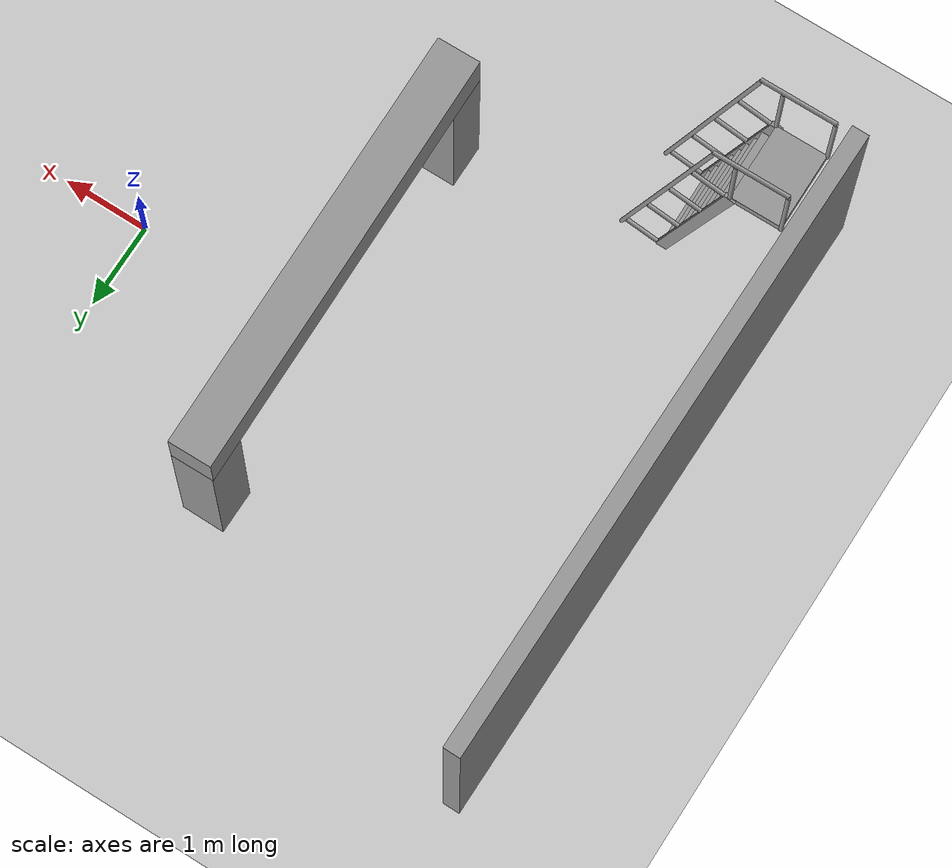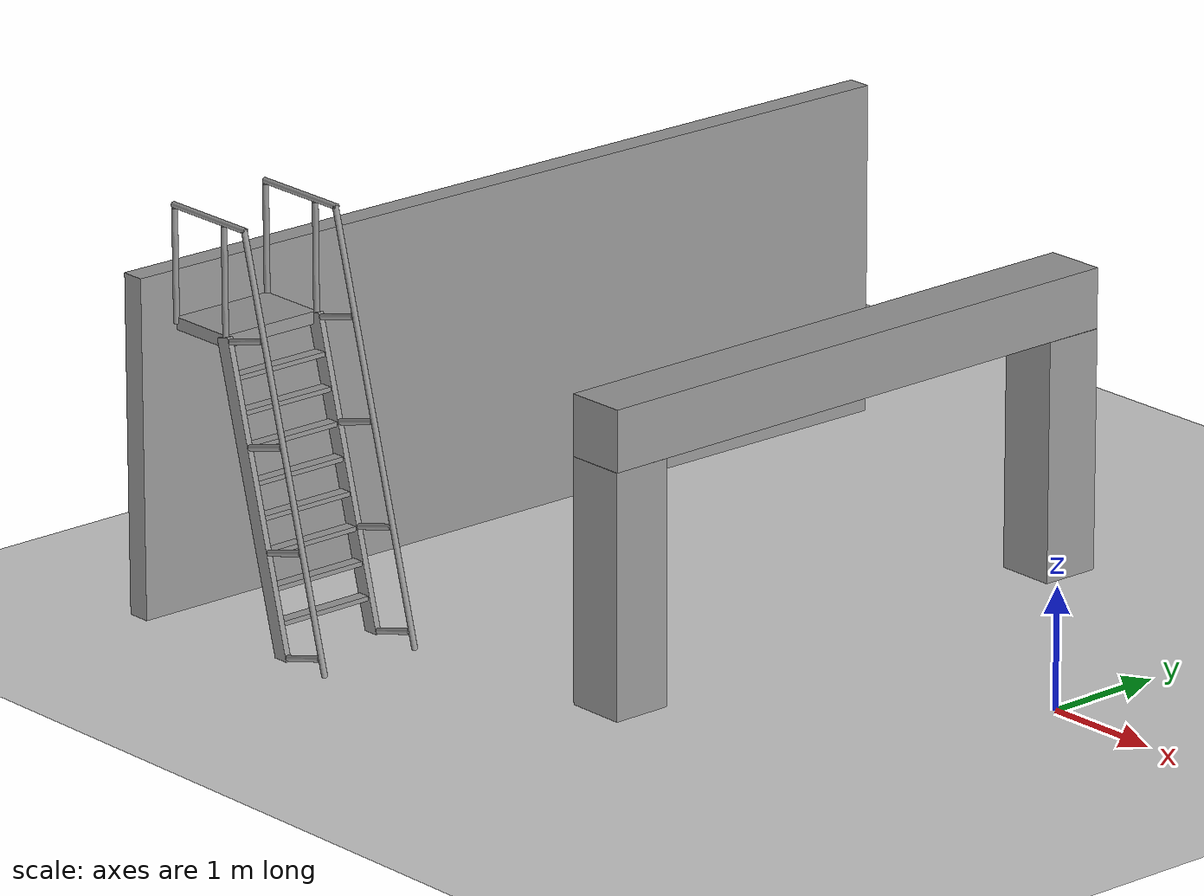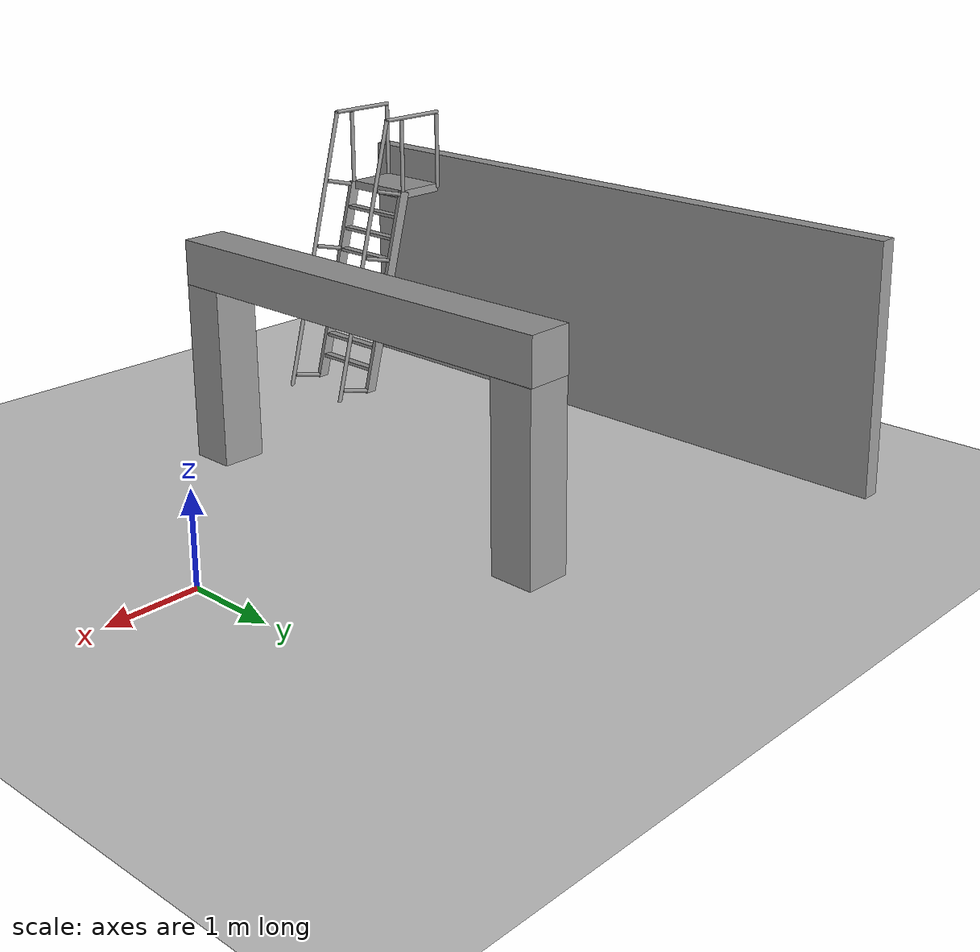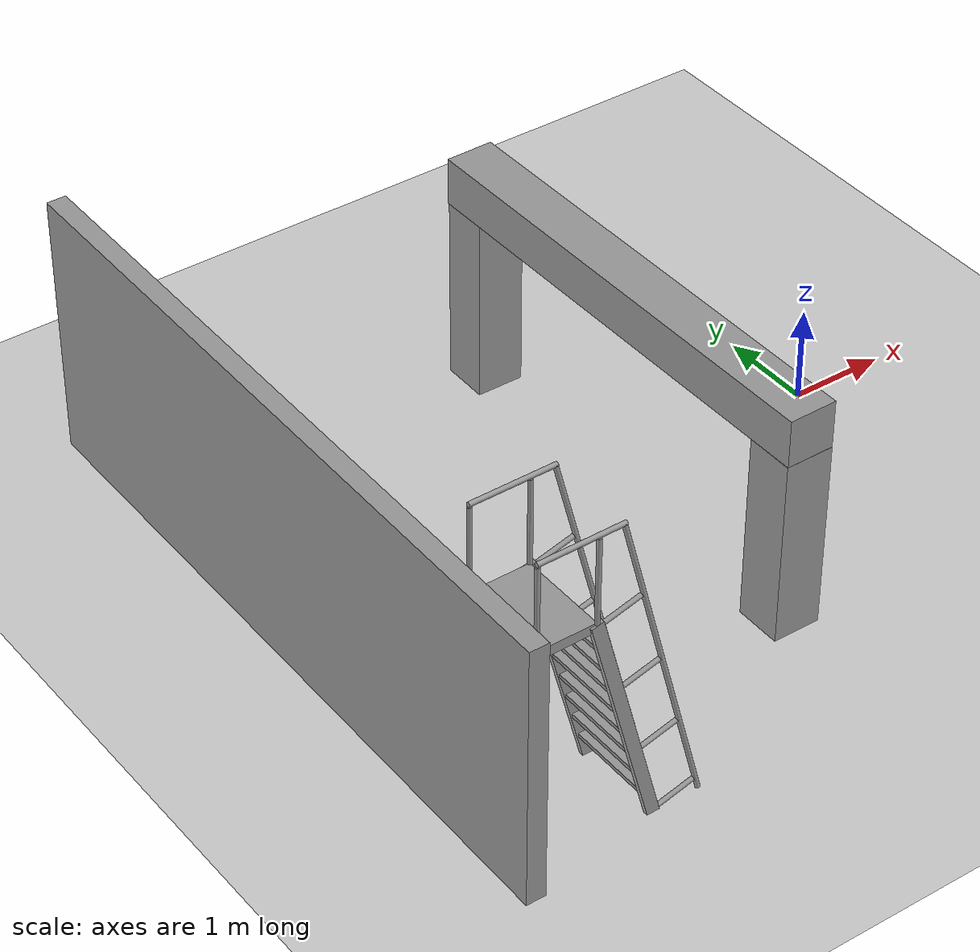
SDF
<sdf version="1.6">
 <world name="default">
  <light name="sun" type="directional">
   <pose>0 0 10 0 -0 0</pose>
   <diffuse>0.8 0.8 0.8 1</diffuse>
   <specular>0.2 0.2 0.2 1</specular>
   <attenuation>
    <range>1000</range>
    <constant>0.9</constant>
    <linear>0.01</linear>
    <quadratic>0.001</quadratic>
   </attenuation>
   <direction>-0.5 0.1 -0.9</direction>
  </light>
  <model name="ground_plane">
   <static>1</static>
   <link name="link">
    <collision name="collision">
     <geometry><plane><normal>0 0 1</normal><size>100 100</size></plane></geometry>
     <surface>
      <contact><collide_bitmask>65535</collide_bitmask></contact>
      <friction><ode><mu>100</mu><mu2>50</mu2></ode></friction>
     </surface>
    </collision>
    <visual name="visual">
     <cast_shadows>0</cast_shadows>
     <geometry><plane><normal>0 0 1</normal><size>100 100</size></plane></geometry>
     <material>
      <script><uri>file://media/materials/scripts/gazebo.material</uri><name>Gazebo/Grey</name></script>
     </material>
    </visual>
   </link>
  </model>
  <gravity>0 0 -9.8</gravity>
  <magnetic_field>6e-06 2.3e-05 -4.2e-05</magnetic_field>
  <atmosphere type="adiabatic"/>
  <physics name="default_physics" default="0" type="ode">
   <max_step_size>0.001</max_step_size>
   <real_time_factor>1</real_time_factor>
   <real_time_update_rate>1000</real_time_update_rate>
  </physics>
  <scene><ambient>0.4 0.4 0.4 1</ambient><background>0.7 0.7 0.7 1</background><shadows>1</shadows></scene>
  <spherical_coordinates>
   <surface_model>EARTH_WGS84</surface_model>
   <latitude_deg>0</latitude_deg>
   <longitude_deg>0</longitude_deg>
   <elevation>0</elevation>
   <heading_deg>0</heading_deg>
  </spherical_coordinates>
  <model name="column">
   <link name="link">
    <inertial>
     <mass>1</mass>
     <inertia>
      <ixx>0.166667</ixx>
      <ixy>0</ixy>
      <ixz>0</ixz>
      <iyy>0.166667</iyy>
      <iyz>0</iyz>
      <izz>0.166667</izz>
     </inertia>
    </inertial>
    <visual name="visual">
     <geometry><box><size>0.5 0.5 5</size></box></geometry>
     <material>
      <script><name>Gazebo/Grey</name><uri>file://media/materials/scripts/gazebo.material</uri></script>
      <shader type="pixel"><normal_map>__default__</normal_map></shader>
      <ambient>0.3 0.3 0.3 1</ambient>
      <diffuse>0.7 0.7 0.7 1</diffuse>
      <specular>0.01 0.01 0.01 1</specular>
      <emissive>0 0 0 1</emissive>
     </material>
    </visual>
    <collision name="collision">
     <geometry><box><size>0.5 0.5 5</size></box></geometry>
     <surface>
      <friction>
       <ode><mu>1</mu><mu2>1</mu2><fdir1>0 0 0</fdir1><slip1>0</slip1><slip2>0</slip2></ode>
       <torsional>
        <coefficient>1</coefficient>
        <patch_radius>0</patch_radius>
        <surface_radius>0</surface_radius>
        <use_patch_radius>1</use_patch_radius>
        <ode><slip>0</slip></ode>
       </torsional>
      </friction>
      <bounce><restitution_coefficient>0</restitution_coefficient><threshold>1e+06</threshold></bounce>
      <contact>
       <collide_without_contact>0</collide_without_contact>
       <collide_without_contact_bitmask>1</collide_without_contact_bitmask>
       <collide_bitmask>1</collide_bitmask>
       <ode>
        <soft_cfm>0</soft_cfm>
        <soft_erp>0.2</soft_erp>
        <kp>1e+13</kp>
        <kd>1</kd>
        <max_vel>0.01</max_vel>
        <min_depth>0</min_depth>
       </ode>
       <bullet>
        <split_impulse>1</split_impulse>
        <split_impulse_penetration_threshold>-0.01</split_impulse_penetration_threshold>
        <soft_cfm>0</soft_cfm>
        <soft_erp>0.2</soft_erp>
        <kp>1e+13</kp>
        <kd>1</kd>
       </bullet>
      </contact>
     </surface>
    </collision>
   </link>
   <static>0</static>
   <pose>-2.27016 -0.159406 2.25 -1.5708 -1e-06 0.007984</pose>
  </model>
  <model name="column_clone_clone">
   <link name="link">
    <inertial>
     <mass>1</mass>
     <inertia>
      <ixx>0.166667</ixx>
      <ixy>0</ixy>
      <ixz>0</ixz>
      <iyy>0.166667</iyy>
      <iyz>0</iyz>
      <izz>0.166667</izz>
     </inertia>
    </inertial>
    <visual name="visual">
     <geometry><box><size>0.5 0.5 2</size></box></geometry>
     <material>
      <script><name>Gazebo/Grey</name><uri>file://media/materials/scripts/gazebo.material</uri></script>
      <shader type="pixel"><normal_map>__default__</normal_map></shader>
      <ambient>0.3 0.3 0.3 1</ambient>
      <diffuse>0.7 0.7 0.7 1</diffuse>
      <specular>0.01 0.01 0.01 1</specular>
      <emissive>0 0 0 1</emissive>
     </material>
    </visual>
    <collision name="collision">
     <geometry><box><size>0.5 0.5 2</size></box></geometry>
     <surface>
      <friction>
       <ode><mu>1</mu><mu2>1</mu2><fdir1>0 0 0</fdir1><slip1>0</slip1><slip2>0</slip2></ode>
       <torsional>
        <coefficient>1</coefficient>
        <patch_radius>0</patch_radius>
        <surface_radius>0</surface_radius>
        <use_patch_radius>1</use_patch_radius>
        <ode><slip>0</slip></ode>
       </torsional>
      </friction>
      <bounce><restitution_coefficient>0</restitution_coefficient><threshold>1e+06</threshold></bounce>
      <contact>
       <collide_without_contact>0</collide_without_contact>
       <collide_without_contact_bitmask>1</collide_without_contact_bitmask>
       <collide_bitmask>1</collide_bitmask>
       <ode>
        <soft_cfm>0</soft_cfm>
        <soft_erp>0.2</soft_erp>
        <kp>1e+13</kp>
        <kd>1</kd>
        <max_vel>0.01</max_vel>
        <min_depth>0</min_depth>
       </ode>
       <bullet>
        <split_impulse>1</split_impulse>
        <split_impulse_penetration_threshold>-0.01</split_impulse_penetration_threshold>
        <soft_cfm>0</soft_cfm>
        <soft_erp>0.2</soft_erp>
        <kp>1e+13</kp>
        <kd>1</kd>
       </bullet>
      </contact>
     </surface>
    </collision>
   </link>
   <static>0</static>
   <pose>-2.25334 -2.41162 1 4e-06 -1e-06 -0.004459</pose>
  </model>
  <model name="column_clone">
   <link name="link">
    <inertial>
     <mass>1</mass>
     <inertia>
      <ixx>0.166667</ixx>
      <ixy>0</ixy>
      <ixz>0</ixz>
      <iyy>0.166667</iyy>
      <iyz>0</iyz>
      <izz>0.166667</izz>
     </inertia>
    </inertial>
    <visual name="visual">
     <geometry><box><size>0.5 0.5 2</size></box></geometry>
     <material>
      <script><name>Gazebo/Grey</name><uri>file://media/materials/scripts/gazebo.material</uri></script>
      <shader type="pixel"><normal_map>__default__</normal_map></shader>
      <ambient>0.3 0.3 0.3 1</ambient>
      <diffuse>0.7 0.7 0.7 1</diffuse>
      <specular>0.01 0.01 0.01 1</specular>
      <emissive>0 0 0 1</emissive>
     </material>
    </visual>
    <collision name="collision">
     <geometry><box><size>0.5 0.5 2</size></box></geometry>
     <surface>
      <friction>
       <ode><mu>1</mu><mu2>1</mu2><fdir1>0 0 0</fdir1><slip1>0</slip1><slip2>0</slip2></ode>
       <torsional>
        <coefficient>1</coefficient>
        <patch_radius>0</patch_radius>
        <surface_radius>0</surface_radius>
        <use_patch_radius>1</use_patch_radius>
        <ode><slip>0</slip></ode>
       </torsional>
      </friction>
      <bounce><restitution_coefficient>0</restitution_coefficient><threshold>1e+06</threshold></bounce>
      <contact>
       <collide_without_contact>0</collide_without_contact>
       <collide_without_contact_bitmask>1</collide_without_contact_bitmask>
       <collide_bitmask>1</collide_bitmask>
       <ode>
        <soft_cfm>0</soft_cfm>
        <soft_erp>0.2</soft_erp>
        <kp>1e+13</kp>
        <kd>1</kd>
        <max_vel>0.01</max_vel>
        <min_depth>0</min_depth>
       </ode>
       <bullet>
        <split_impulse>1</split_impulse>
        <split_impulse_penetration_threshold>-0.01</split_impulse_penetration_threshold>
        <soft_cfm>0</soft_cfm>
        <soft_erp>0.2</soft_erp>
        <kp>1e+13</kp>
        <kd>1</kd>
       </bullet>
      </contact>
     </surface>
    </collision>
   </link>
   <static>0</static>
   <pose>-2.28181 2.08738 1 -1e-06 -0 -0.009076</pose>
  </model>
  <model name="grey_wall">
   <static>1</static>
   <link name="link">
    <pose>0 0 1.4 0 -0 0</pose>
    <collision name="collision"><geometry><box><size>7.5 0.2 2.8</size></box></geometry></collision>
    <visual name="visual">
     <cast_shadows>0</cast_shadows>
     <geometry><box><size>7.5 0.2 2.8</size></box></geometry>
     <material>
      <script>
       <uri>model://grey_wall/materials/scripts</uri>
       <uri>model://grey_wall/materials/textures</uri>
       <name>vrc/grey_wall</name>
      </script>
     </material>
    </visual>
   </link>
   <pose>-6.11502 -0.224184 0 0 0 -1.57929</pose>
  </model>
  <model name="ladder_75deg_2rails">
   <static>1</static>
   <link name="step0">
    <pose>0 0.071453 0.266667 0 -0 0</pose>
    <inertial>
     <mass>9.75482</mass>
     <inertia>
      <ixx>0.00957124</ixx>
      <iyy>0.65963</iyy>
      <izz>0.666842</izz>
      <ixy>0</ixy>
      <ixz>0</ixz>
      <iyz>0</iyz>
     </inertia>
    </inertial>
    <collision name="collision"><geometry><box><size>0.9 0.1016 0.0381</size></box></geometry></collision>
    <visual name="visual">
     <geometry><box><size>0.9 0.1016 0.0381</size></box></geometry>
     <material>
      <script><uri>file://media/materials/scripts/gazebo.material</uri><name>Gazebo/Grey</name></script>
     </material>
    </visual>
   </link>
   <link name="step1">
    <pose>0 0.142906 0.533333 0 -0 0</pose>
    <inertial>
     <mass>9.75482</mass>
     <inertia>
      <ixx>0.00957124</ixx>
      <iyy>0.65963</iyy>
      <izz>0.666842</izz>
      <ixy>0</ixy>
      <ixz>0</ixz>
      <iyz>0</iyz>
     </inertia>
    </inertial>
    <collision name="collision"><geometry><box><size>0.9 0.1016 0.0381</size></box></geometry></collision>
    <visual name="visual">
     <geometry><box><size>0.9 0.1016 0.0381</size></box></geometry>
     <material>
      <script><uri>file://media/materials/scripts/gazebo.material</uri><name>Gazebo/Grey</name></script>
     </material>
    </visual>
   </link>
   <link name="step2">
    <pose>0 0.214359 0.8 0 -0 0</pose>
    <inertial>
     <mass>9.75482</mass>
     <inertia>
      <ixx>0.00957124</ixx>
      <iyy>0.65963</iyy>
      <izz>0.666842</izz>
      <ixy>0</ixy>
      <ixz>0</ixz>
      <iyz>0</iyz>
     </inertia>
    </inertial>
    <collision name="collision"><geometry><box><size>0.9 0.1016 0.0381</size></box></geometry></collision>
    <visual name="visual">
     <geometry><box><size>0.9 0.1016 0.0381</size></box></geometry>
     <material>
      <script><uri>file://media/materials/scripts/gazebo.material</uri><name>Gazebo/Grey</name></script>
     </material>
    </visual>
   </link>
   <link name="step3">
    <pose>0 0.285812 1.06667 0 -0 0</pose>
    <inertial>
     <mass>9.75482</mass>
     <inertia>
      <ixx>0.00957124</ixx>
      <iyy>0.65963</iyy>
      <izz>0.666842</izz>
      <ixy>0</ixy>
      <ixz>0</ixz>
      <iyz>0</iyz>
     </inertia>
    </inertial>
    <collision name="collision"><geometry><box><size>0.9 0.1016 0.0381</size></box></geometry></collision>
    <visual name="visual">
     <geometry><box><size>0.9 0.1016 0.0381</size></box></geometry>
     <material>
      <script><uri>file://media/materials/scripts/gazebo.material</uri><name>Gazebo/Grey</name></script>
     </material>
    </visual>
   </link>
   <link name="step4">
    <pose>0 0.357266 1.33333 0 -0 0</pose>
    <inertial>
     <mass>9.75482</mass>
     <inertia>
      <ixx>0.00957124</ixx>
      <iyy>0.65963</iyy>
      <izz>0.666842</izz>
      <ixy>0</ixy>
      <ixz>0</ixz>
      <iyz>0</iyz>
     </inertia>
    </inertial>
    <collision name="collision"><geometry><box><size>0.9 0.1016 0.0381</size></box></geometry></collision>
    <visual name="visual">
     <geometry><box><size>0.9 0.1016 0.0381</size></box></geometry>
     <material>
      <script><uri>file://media/materials/scripts/gazebo.material</uri><name>Gazebo/Grey</name></script>
     </material>
    </visual>
   </link>
   <link name="step5">
    <pose>0 0.428719 1.6 0 -0 0</pose>
    <inertial>
     <mass>9.75482</mass>
     <inertia>
      <ixx>0.00957124</ixx>
      <iyy>0.65963</iyy>
      <izz>0.666842</izz>
      <ixy>0</ixy>
      <ixz>0</ixz>
      <iyz>0</iyz>
     </inertia>
    </inertial>
    <collision name="collision"><geometry><box><size>0.9 0.1016 0.0381</size></box></geometry></collision>
    <visual name="visual">
     <geometry><box><size>0.9 0.1016 0.0381</size></box></geometry>
     <material>
      <script><uri>file://media/materials/scripts/gazebo.material</uri><name>Gazebo/Grey</name></script>
     </material>
    </visual>
   </link>
   <link name="step6">
    <pose>0 0.500172 1.86667 0 -0 0</pose>
    <inertial>
     <mass>9.75482</mass>
     <inertia>
      <ixx>0.00957124</ixx>
      <iyy>0.65963</iyy>
      <izz>0.666842</izz>
      <ixy>0</ixy>
      <ixz>0</ixz>
      <iyz>0</iyz>
     </inertia>
    </inertial>
    <collision name="collision"><geometry><box><size>0.9 0.1016 0.0381</size></box></geometry></collision>
    <visual name="visual">
     <geometry><box><size>0.9 0.1016 0.0381</size></box></geometry>
     <material>
      <script><uri>file://media/materials/scripts/gazebo.material</uri><name>Gazebo/Grey</name></script>
     </material>
    </visual>
   </link>
   <link name="step7">
    <pose>0 0.571625 2.13333 0 -0 0</pose>
    <inertial>
     <mass>9.75482</mass>
     <inertia>
      <ixx>0.00957124</ixx>
      <iyy>0.65963</iyy>
      <izz>0.666842</izz>
      <ixy>0</ixy>
      <ixz>0</ixz>
      <iyz>0</iyz>
     </inertia>
    </inertial>
    <collision name="collision"><geometry><box><size>0.9 0.1016 0.0381</size></box></geometry></collision>
    <visual name="visual">
     <geometry><box><size>0.9 0.1016 0.0381</size></box></geometry>
     <material>
      <script><uri>file://media/materials/scripts/gazebo.material</uri><name>Gazebo/Grey</name></script>
     </material>
    </visual>
   </link>
   <link name="landing">
    <pose>0 0.943078 2.4 0 -0 0</pose>
    <inertial>
     <mass>57.6072</mass>
     <inertia><ixx>1.73518</ixx><iyy>3.89545</iyy><izz>5.6167</izz><ixy>0</ixy><ixz>0</ixz><iyz>0</iyz></inertia>
    </inertial>
    <collision name="collision"><geometry><box><size>0.9 0.6 0.1016</size></box></geometry></collision>
    <visual name="visual">
     <geometry><box><size>0.9 0.6 0.1016</size></box></geometry>
     <material>
      <script><uri>file://media/materials/scripts/gazebo.material</uri><name>Gazebo/Grey</name></script>
     </material>
    </visual>
   </link>
   <link name="left_side_wall">
    <pose>-0.45 0.321539 1.2 1.309 -0 0</pose>
    <collision name="collision"><geometry><box><size>0.0508 2.56466 0.13</size></box></geometry></collision>
    <visual name="visual">
     <geometry><box><size>0.0508 2.56466 0.13</size></box></geometry>
     <material>
      <script><uri>file://media/materials/scripts/gazebo.material</uri><name>Gazebo/Grey</name></script>
     </material>
    </visual>
   </link>
   <link name="right_side_wall">
    <pose>0.45 0.321539 1.2 1.309 -0 0</pose>
    <collision name="collision"><geometry><box><size>0.0508 2.56466 0.13</size></box></geometry></collision>
    <visual name="visual">
     <geometry><box><size>0.0508 2.56466 0.13</size></box></geometry>
     <material>
      <script><uri>file://media/materials/scripts/gazebo.material</uri><name>Gazebo/Grey</name></script>
     </material>
    </visual>
   </link>
   <link name="left_railing_long">
    <pose>-0.45 -0.053461 1.66651 -0.261799 0 0</pose>
    <collision name="collision">
     <geometry><cylinder><radius>0.02413</radius><length>3.51529</length></cylinder></geometry>
    </collision>
    <visual name="visual">
     <geometry><cylinder><radius>0.02413</radius><length>3.51529</length></cylinder></geometry>
     <material>
      <script><uri>file://media/materials/scripts/gazebo.material</uri><name>Gazebo/Grey</name></script>
     </material>
    </visual>
   </link>
   <link name="left_railing_upright0">
    <pose>-0.45 -0.210089 0.056293 1.309 -0 0</pose>
    <collision name="collision">
     <geometry><cylinder><radius>0.02413</radius><length>0.482963</length></cylinder></geometry>
    </collision>
    <visual name="visual">
     <geometry><cylinder><radius>0.02413</radius><length>0.482963</length></cylinder></geometry>
     <material>
      <script><uri>file://media/materials/scripts/gazebo.material</uri><name>Gazebo/Grey</name></script>
     </material>
    </visual>
   </link>
   <link name="left_railing_upright1">
    <pose>-0.45 0.00427 0.856293 1.309 -0 0</pose>
    <collision name="collision">
     <geometry><cylinder><radius>0.02413</radius><length>0.482963</length></cylinder></geometry>
    </collision>
    <visual name="visual">
     <geometry><cylinder><radius>0.02413</radius><length>0.482963</length></cylinder></geometry>
     <material>
      <script><uri>file://media/materials/scripts/gazebo.material</uri><name>Gazebo/Grey</name></script>
     </material>
    </visual>
   </link>
   <link name="left_railing_upright2">
    <pose>-0.45 0.21863 1.65629 1.309 -0 0</pose>
    <collision name="collision">
     <geometry><cylinder><radius>0.02413</radius><length>0.482963</length></cylinder></geometry>
    </collision>
    <visual name="visual">
     <geometry><cylinder><radius>0.02413</radius><length>0.482963</length></cylinder></geometry>
     <material>
      <script><uri>file://media/materials/scripts/gazebo.material</uri><name>Gazebo/Grey</name></script>
     </material>
    </visual>
   </link>
   <link name="left_railing_upright3">
    <pose>-0.45 0.432989 2.45629 1.309 -0 0</pose>
    <collision name="collision">
     <geometry><cylinder><radius>0.02413</radius><length>0.482963</length></cylinder></geometry>
    </collision>
    <visual name="visual">
     <geometry><cylinder><radius>0.02413</radius><length>0.482963</length></cylinder></geometry>
     <material>
      <script><uri>file://media/materials/scripts/gazebo.material</uri><name>Gazebo/Grey</name></script>
     </material>
    </visual>
   </link>
   <link name="left_railing_landing_top">
    <pose>-0.45 0.818078 3.35714 1.5708 -0 0</pose>
    <collision name="collision">
     <geometry><cylinder><radius>0.02413</radius><length>0.87413</length></cylinder></geometry>
    </collision>
    <visual name="visual">
     <geometry><cylinder><radius>0.02413</radius><length>0.87413</length></cylinder></geometry>
     <material>
      <script><uri>file://media/materials/scripts/gazebo.material</uri><name>Gazebo/Grey</name></script>
     </material>
    </visual>
   </link>
   <link name="left_railing_landing_upright_0">
    <pose>-0.45 0.643078 2.86651 0 -0 0</pose>
    <collision name="collision">
     <geometry><cylinder><radius>0.02413</radius><length>0.933013</length></cylinder></geometry>
    </collision>
    <visual name="visual">
     <geometry><cylinder><radius>0.02413</radius><length>0.933013</length></cylinder></geometry>
     <material>
      <script><uri>file://media/materials/scripts/gazebo.material</uri><name>Gazebo/Grey</name></script>
     </material>
    </visual>
   </link>
   <link name="left_railing_landing_upright_1">
    <pose>-0.45 1.24308 2.86651 0 -0 0</pose>
    <collision name="collision">
     <geometry><cylinder><radius>0.02413</radius><length>0.933013</length></cylinder></geometry>
    </collision>
    <visual name="visual">
     <geometry><cylinder><radius>0.02413</radius><length>0.933013</length></cylinder></geometry>
     <material>
      <script><uri>file://media/materials/scripts/gazebo.material</uri><name>Gazebo/Grey</name></script>
     </material>
    </visual>
   </link>
   <link name="right_railing_long">
    <pose>0.45 -0.053461 1.66651 -0.261799 0 0</pose>
    <collision name="collision">
     <geometry><cylinder><radius>0.02413</radius><length>3.51529</length></cylinder></geometry>
    </collision>
    <visual name="visual">
     <geometry><cylinder><radius>0.02413</radius><length>3.51529</length></cylinder></geometry>
     <material>
      <script><uri>file://media/materials/scripts/gazebo.material</uri><name>Gazebo/Grey</name></script>
     </material>
    </visual>
   </link>
   <link name="right_railing_upright0">
    <pose>0.45 -0.210089 0.056293 1.309 -0 0</pose>
    <collision name="collision">
     <geometry><cylinder><radius>0.02413</radius><length>0.482963</length></cylinder></geometry>
    </collision>
    <visual name="visual">
     <geometry><cylinder><radius>0.02413</radius><length>0.482963</length></cylinder></geometry>
     <material>
      <script><uri>file://media/materials/scripts/gazebo.material</uri><name>Gazebo/Grey</name></script>
     </material>
    </visual>
   </link>
   <link name="right_railing_upright1">
    <pose>0.45 0.00427 0.856293 1.309 -0 0</pose>
    <collision name="collision">
     <geometry><cylinder><radius>0.02413</radius><length>0.482963</length></cylinder></geometry>
    </collision>
    <visual name="visual">
     <geometry><cylinder><radius>0.02413</radius><length>0.482963</length></cylinder></geometry>
     <material>
      <script><uri>file://media/materials/scripts/gazebo.material</uri><name>Gazebo/Grey</name></script>
     </material>
    </visual>
   </link>
   <link name="right_railing_upright2">
    <pose>0.45 0.21863 1.65629 1.309 -0 0</pose>
    <collision name="collision">
     <geometry><cylinder><radius>0.02413</radius><length>0.482963</length></cylinder></geometry>
    </collision>
    <visual name="visual">
     <geometry><cylinder><radius>0.02413</radius><length>0.482963</length></cylinder></geometry>
     <material>
      <script><uri>file://media/materials/scripts/gazebo.material</uri><name>Gazebo/Grey</name></script>
     </material>
    </visual>
   </link>
   <link name="right_railing_upright3">
    <pose>0.45 0.432989 2.45629 1.309 -0 0</pose>
    <collision name="collision">
     <geometry><cylinder><radius>0.02413</radius><length>0.482963</length></cylinder></geometry>
    </collision>
    <visual name="visual">
     <geometry><cylinder><radius>0.02413</radius><length>0.482963</length></cylinder></geometry>
     <material>
      <script><uri>file://media/materials/scripts/gazebo.material</uri><name>Gazebo/Grey</name></script>
     </material>
    </visual>
   </link>
   <link name="right_railing_landing_top">
    <pose>0.45 0.818078 3.35714 1.5708 -0 0</pose>
    <collision name="collision">
     <geometry><cylinder><radius>0.02413</radius><length>0.87413</length></cylinder></geometry>
    </collision>
    <visual name="visual">
     <geometry><cylinder><radius>0.02413</radius><length>0.87413</length></cylinder></geometry>
     <material>
      <script><uri>file://media/materials/scripts/gazebo.material</uri><name>Gazebo/Grey</name></script>
     </material>
    </visual>
   </link>
   <link name="right_railing_landing_upright_0">
    <pose>0.45 0.643078 2.86651 0 -0 0</pose>
    <collision name="collision">
     <geometry><cylinder><radius>0.02413</radius><length>0.933013</length></cylinder></geometry>
    </collision>
    <visual name="visual">
     <geometry><cylinder><radius>0.02413</radius><length>0.933013</length></cylinder></geometry>
     <material>
      <script><uri>file://media/materials/scripts/gazebo.material</uri><name>Gazebo/Grey</name></script>
     </material>
    </visual>
   </link>
   <link name="right_railing_landing_upright_1">
    <pose>0.45 1.24308 2.86651 0 -0 0</pose>
    <collision name="collision">
     <geometry><cylinder><radius>0.02413</radius><length>0.933013</length></cylinder></geometry>
    </collision>
    <visual name="visual">
     <geometry><cylinder><radius>0.02413</radius><length>0.933013</length></cylinder></geometry>
     <material>
      <script><uri>file://media/materials/scripts/gazebo.material</uri><name>Gazebo/Grey</name></script>
     </material>
    </visual>
   </link>
   <pose>-4.72307 -3.24361 0 0 -0 1.57164</pose>
  </model>
  <plugin name="gazebo_octomap" filename="libBuildOctomapPlugin.so"/>
  <plugin name="ros_link_attacher_plugin" filename="libgazebo_ros_link_attacher_plugin.so"/>
  <plugin name="gazebo_ros_factory" filename="libgazebo_ros_factory.so"/>
 </world>
</sdf>
